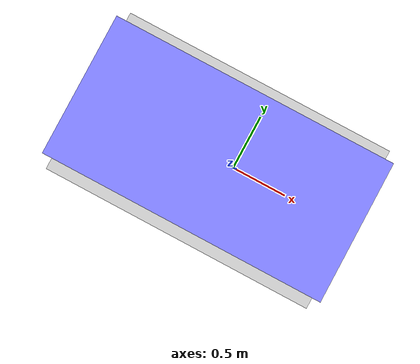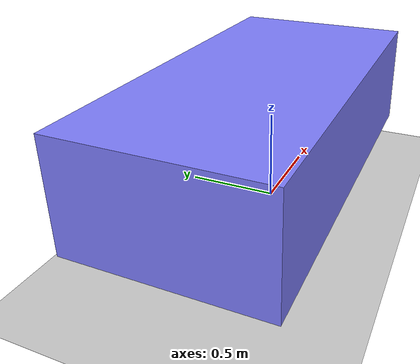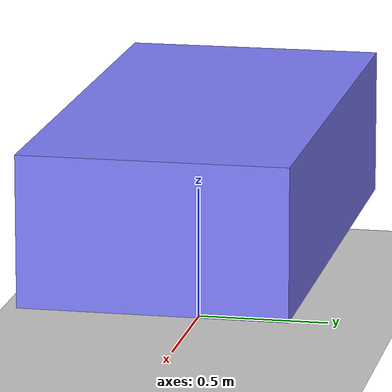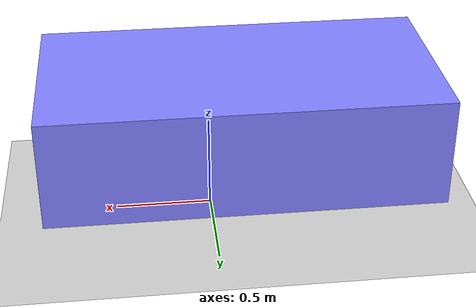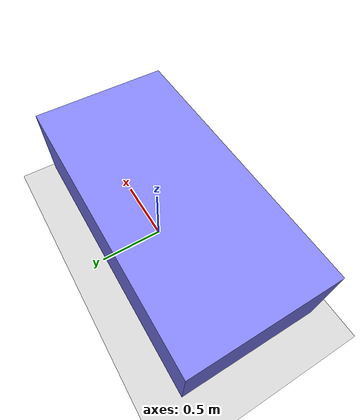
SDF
<?xml version="1.0"?>
<sdf version="1.8">
    <world name="demo">
        <plugin
            filename="gz-sim-physics-system"
            name="gz::sim::systems::Physics">
        </plugin>
        <plugin
            filename="BasicSystem"
            name="ros_gz_example_gazebo::BasicSystem">
        </plugin>
        <plugin
            filename="FullSystem"
            name="ros_gz_example_gazebo::FullSystem">
        </plugin>

        <light name="sun" type="directional">
            <cast_shadows>true</cast_shadows>
            <pose>0 0 10 0 0 0</pose>
            <diffuse>0.8 0.8 0.8 1</diffuse>
            <specular>0.2 0.2 0.2 1</specular>
            <attenuation>
                <range>1000</range>
                <constant>0.9</constant>
                <linear>0.01</linear>
                <quadratic>0.001</quadratic>
            </attenuation>
            <direction>-0.5 0.1 -0.9</direction>
        </light>

        <model name="ground_plane">
            <static>true</static>
            <link name="link">
                <collision name="collision">
                    <geometry>
                        <plane>
                            <normal>0 0 1</normal>
                            <size>100 100</size>
                        </plane>
                    </geometry>
                </collision>
                <visual name="visual">
                    <geometry>
                        <plane>
                            <normal>0 0 1</normal>
                            <size>100 100</size>
                        </plane>
                    </geometry>
                    <material>
                        <ambient>0.8 0.8 0.8 1</ambient>
                        <diffuse>0.8 0.8 0.8 1</diffuse>
                        <specular>0.8 0.8 0.8 1</specular>
                    </material>
                </visual>
            </link>
        </model>

        <model name="simple">
            <self_collide>true</self_collide>
            <pose>0 0 0.35 0 0 0</pose>
            <include merge="true">
                <uri>package://kabot_description/models/simple</uri>
            </include>
        </model>

    </world>
</sdf>

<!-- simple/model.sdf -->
<sdf version="1.8">
    <model name='simple'>
      <link name='chassis'>
        <pose>-0.151427 -0 0.175 0 -0 0</pose>
        <inertial>
          <mass>1.14395</mass>
          <inertia>
            <ixx>0.126164</ixx>
            <ixy>0</ixy>
            <ixz>0</ixz>
            <iyy>0.416519</iyy>
            <iyz>0</iyz>
            <izz>0.481014</izz>
          </inertia>
        </inertial>
        <visual name='visual_chassis'>
          <geometry>
            <box>
              <size>2.01142 1 0.568726</size>
            </box>
          </geometry>
          <material>
            <ambient>0.5 0.5 1.0 1</ambient>
            <diffuse>0.5 0.5 1.0 1</diffuse>
            <specular>0.0 0.0 1.0 1</specular>
          </material>
        </visual>
        <collision name='collision_chassis'>
          <geometry>
            <box>
              <size>2.01142 1 0.568726</size>
            </box>
          </geometry>
        </collision>
      </link>
    </model>
</sdf>
